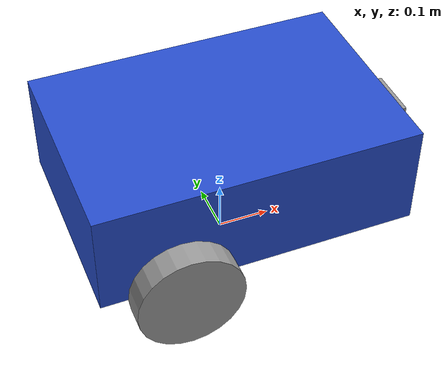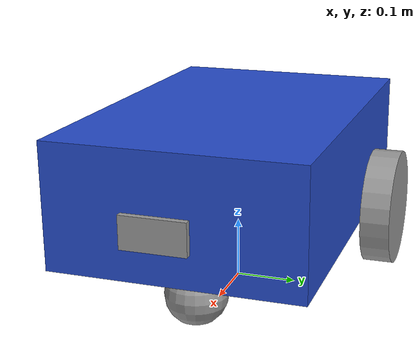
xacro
<?xml version="1.0"?>
<robot name="my_robot" xmlns:xacro="http://www.ros.org/wiki/xacro">

    <!-- 'common_properties' should come first so other files have access to it -->
    <xacro:include filename="common_properties.xacro" />
    <xacro:include filename="mobile_base.xacro" />
    <xacro:include filename="mobile_base_gazebo.xacro" />
    <xacro:include filename="camera.xacro" />

</robot>

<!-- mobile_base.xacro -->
<robot xmlns:xacro="http://www.ros.org/wiki/xacro">

    <!-- Body Variables -->
    <xacro:property name="base_length" value="0.6" />
    <xacro:property name="base_width" value="0.4" />
    <xacro:property name="base_height" value="0.2" />
    <xacro:property name="wheel_radius" value="0.1" />
    <xacro:property name="wheel_length" value="0.05" />
    <xacro:property name="caster_radius" value="${wheel_radius / 2.0}" />

    <!-- Link Definitions  -->
    <link name="base_footprint" />

    <link name="base_link">
        <visual>
            <geometry>
                <box size="${base_length} ${base_width} ${base_height}" />
            </geometry>
            <origin xyz="0 0 ${base_height / 2.0}" rpy="0 0 0" />
            <material name="blue" />
        </visual>
        <collision>
            <geometry>
                <box size="${base_length} ${base_width} ${base_height}" />
            </geometry>
            <origin xyz="0 0 ${base_height / 2.0}" rpy="0 0 0" />
        </collision>
        <xacro:box_inertia m="5.0" x="${base_length}" y="${base_width}" z="${base_height}"
                        o_xyz="0 0 ${base_height / 2.0}" o_rpy="0 0 0" />
    </link>

    <xacro:macro name="wheel_link" params="prefix">
        <link name="${prefix}_wheel_link">
            <visual>
                <geometry>
                    <cylinder radius="${wheel_radius}" length="${wheel_length}" />
                </geometry>
                <origin xyz="0 0 0" rpy="0 0 0" />
                <material name="grey" />
            </visual>
            <collision>
                <geometry>
                    <cylinder radius="${wheel_radius}" length="${wheel_length}"/>
                </geometry>
                <origin xyz="0 0 0" rpy="0 0 0" />
            </collision>
        <xacro:cylinder_inertia m="1.0" r="${wheel_radius}" h="${wheel_length}"
                        o_xyz="0 0 0" o_rpy="0 0 0" />
        </link>
    </xacro:macro>

    <xacro:wheel_link prefix="right" />
    <xacro:wheel_link prefix="left" />

    <link name="caster_wheel_link">
        <visual>
            <geometry>
                <sphere radius="${caster_radius}" />
            </geometry>
            <origin xyz="0 0 0" rpy="0 0 0" />
            <material name="grey" />
        </visual>
        <collision>
            <geometry>
                <sphere radius="${caster_radius}" />
            </geometry>
            <origin xyz="0 0 0" rpy="0 0 0" />
        </collision>
        <xacro:sphere_inertia m="0.5" r="${caster_radius}"
                        o_xyz="0 0 0" o_rpy="0 0 0" />
    </link>

    <!-- Joint Definitions -->
    <joint name="base_joint" type="fixed">
        <parent link="base_footprint" />
        <child link="base_link" />
        <origin xyz="0 0 ${wheel_radius}" rpy="0 0 0"/>
    </joint>

    <joint name="base_right_wheel_joint" type="continuous">
        <parent link="base_link" />
        <child link="right_wheel_link" />
        <origin xyz="${-base_length / 4.0} ${-(base_width + wheel_length) / 2.0} 0" rpy="-${pi / 2.0} 0 0"/>
        <axis xyz="0 0 1" />
    </joint>

    <joint name="base_left_wheel_joint" type="continuous">
        <parent link="base_link" />
        <child link="left_wheel_link" />
        <origin xyz="${-base_length / 4.0} ${(base_width + wheel_length) / 2.0} 0" rpy="-${pi / 2.0} 0 0"/>
        <axis xyz="0 0 1" />
    </joint>

    <joint name="base_caster_wheel_joint" type="fixed">
        <parent link="base_link" />
        <child link="caster_wheel_link" />
        <origin xyz="${base_length / 3.0} 0 ${-caster_radius}" rpy="0 0 0"/>
        <axis xyz="0 0 1" />
    </joint>

</robot>

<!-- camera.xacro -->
<robot xmlns:xacro="http://www.ros.org/wiki/xacro">

    <xacro:property name="camera_length" value="0.01" />
    <xacro:property name="camera_width" value="0.1" />
    <xacro:property name="camera_height" value="0.05" />

    <link name="camera_link">
        <visual>
            <geometry>
                <box size="${camera_length} ${camera_width} ${camera_height}" />
            </geometry>
            <origin xyz="${camera_length / 2.0} 0 0" rpy="0 0 0" />
            <material name="grey" />
        </visual>
        <collision>
            <geometry>
                <box size="${camera_length} ${camera_width} ${camera_height}" />
            </geometry>
        </collision>
        <xacro:box_inertia m="0.1" x="${camera_length}" y="${camera_width}" z="${camera_height}"
                        o_xyz="${camera_length / 2.0} 0 0" o_rpy="0 0 0" />
    </link>

    <link name="camera_link_optical">
    </link>

    <joint name="base_camera_joint" type="fixed">
        <parent link="base_link" />
        <child link="camera_link" />
        <origin xyz="${base_length / 2.0 + 0.05} 0 ${base_height / 2.0}" rpy="0 0 0"/>
    </joint>

    <!-- generate an optical frame
    http://www.ros.org/reps/rep-0103.html#suffix-frames
    so that ros and opencv can operate on the camera frame correctly
    -->
    <joint name="camera_optical_joint" type="fixed">
        <!-- these values have to be these values otherwise the gazebo camera
            image won't be aligned properly with the frame it is supposedly
            originating from -->
        <parent link="camera_link"/>
        <child link="camera_link_optical"/>
        <origin xyz="0 0 0" rpy="${-pi/2} 0 ${-pi/2}"/>
    </joint>

    <gazebo reference="camera_link">
        <sensor name="camera" type="camera">
            <camera>
                <horizontal_fov>1.3962634</horizontal_fov>
                <image>
                    <width>640</width>
                    <height>480</height>
                    <format>R8G8B8</format>
                </image>
                <clip>
                    <near>0.1</near>
                    <far>15</far>
                </clip>
                <noise>
                    <type>gaussian</type>
                    <mean>0.0</mean>
                    <stddev>0.007</stddev>
                </noise>
                <optical_frame_id>camera_link_optical</optical_frame_id>
                <camera_info_topic>camera/camera_info</camera_info_topic>
            </camera>
            <always_on>1</always_on>
            <update_rate>20</update_rate>
            <visualize>true</visualize>
            <topic>camera/image_raw</topic>
        </sensor>
    </gazebo>

</robot>
